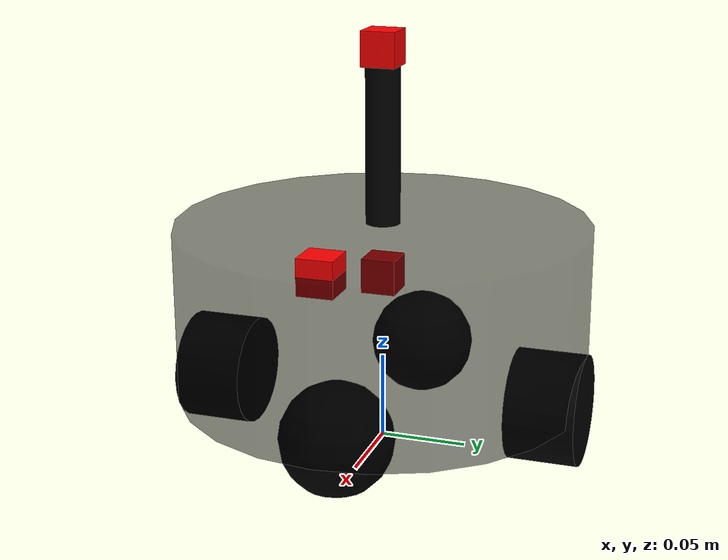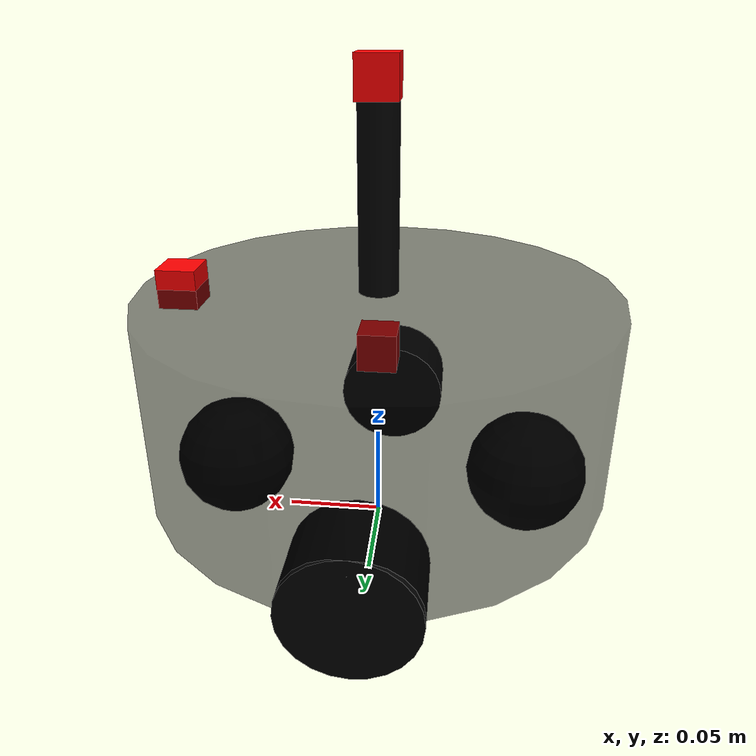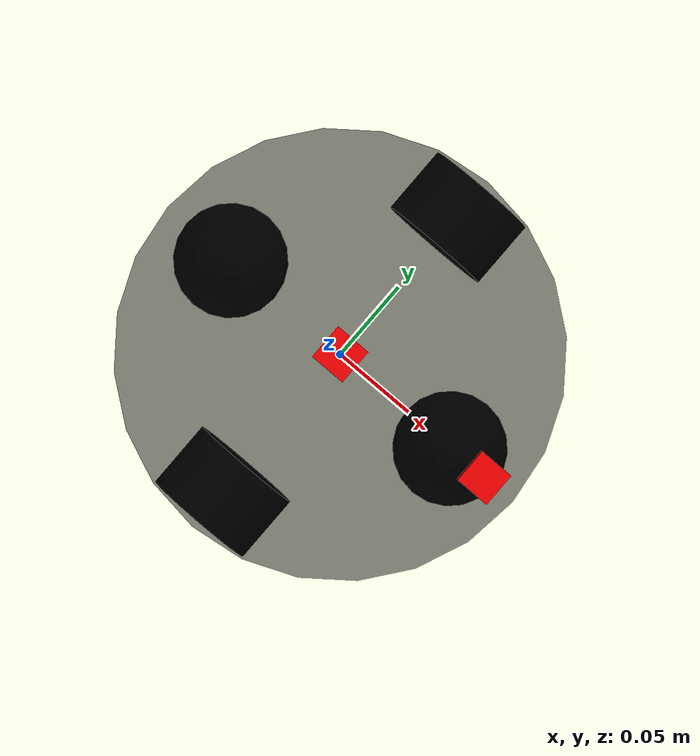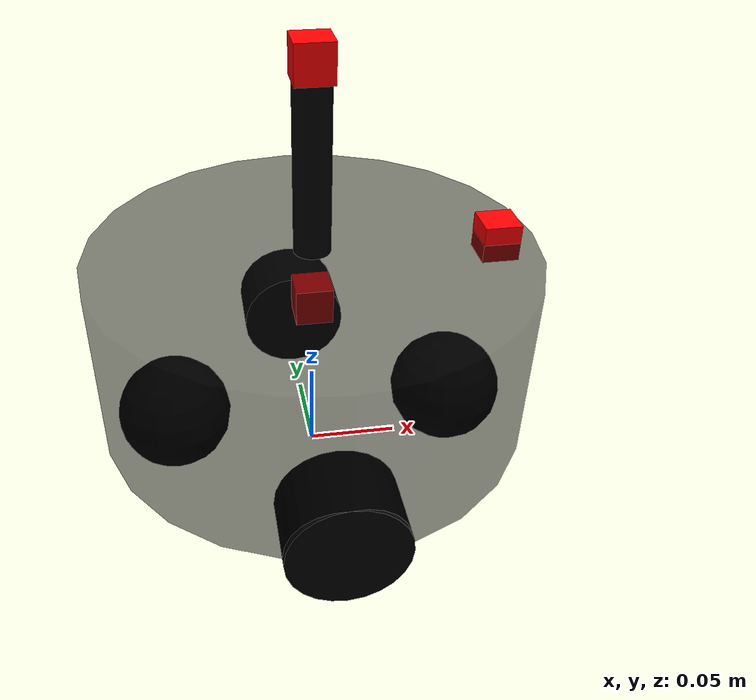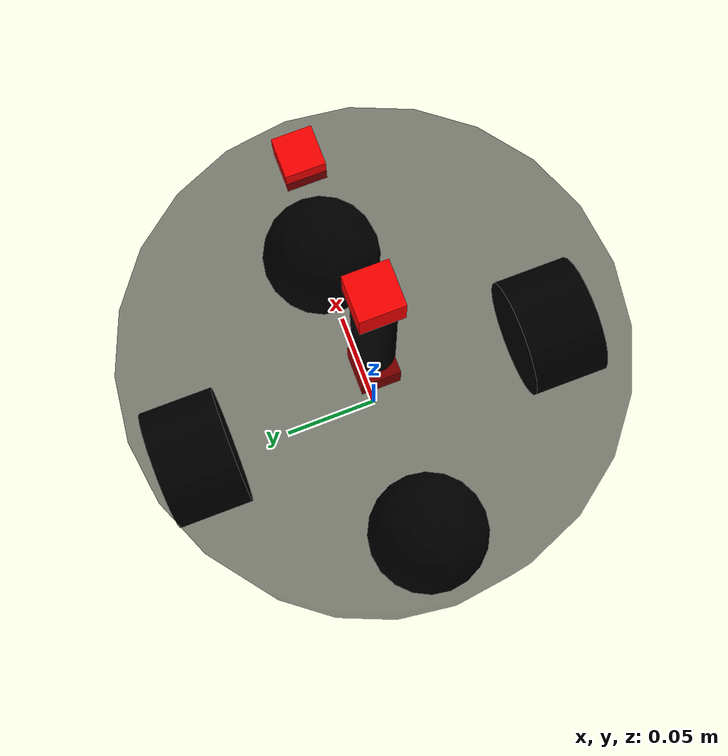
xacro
<?xml version="1.0"?>
<robot name="fishbot" xmlns:xacro="http://www.ros.org/wiki/xacro">

  <!-- Include base macro -->
  <xacro:include filename="$(find mybot_description)/urdf/fishbot/base.urdf.xacro"/>

  <!-- Include modular sensor components from sensor folder -->
  <xacro:include filename="$(find mybot_description)/urdf/fishbot/sensor/camera.urdf.xacro"/>
  <xacro:include filename="$(find mybot_description)/urdf/fishbot/sensor/imu.urdf.xacro"/>
  <xacro:include filename="$(find mybot_description)/urdf/fishbot/sensor/laser.urdf.xacro"/>
  <xacro:include filename="$(find mybot_description)/urdf/fishbot/actuator/wheel.xacro"/>
  <xacro:include filename="$(find mybot_description)/urdf/fishbot/actuator/caster.xacro"/>
  <xacro:include filename="$(find mybot_description)/urdf/fishbot/plugins/gazebo_control_plugins.xacro"/>
  <xacro:include filename="$(find mybot_description)/urdf/fishbot/plugins/gazebo_sensor_plugins.xacro"/>
  <xacro:include filename="$(find mybot_description)/urdf/fishbot/fishbot.ros2_control.xacro"/>

   <!-- Instantiate Gazebo control plugins -->

  <!-- Instantiate base: cylinder length=0.12, radius=0.1 -->
  <xacro:base_xacro length="0.1" radius="0.12"/>

  <!-- Instantiate sensors with provided parameters -->
  <xacro:imu_xacro joint_xyz="0 0 0.02"/>
  <xacro:camera_xacro joint_xyz="0.1 0 0.05"/>
  <xacro:laser_xacro joint_xyz="0 0 0.1"/>

  <xacro:wheel_xacro wheel_name="left_wheel" xyz="0 0.1 -0.05"/>
  <xacro:wheel_xacro wheel_name="right_wheel" xyz="0 -0.1 -0.05"/>

  <xacro:caster_xacro caster_name="front_caster" xyz="0.08 0 -0.05"/>
  <xacro:caster_xacro caster_name="back_caster" xyz="-0.08 0 -0.05"/>
  <xacro:gazebo_sensor_plugin/>
  <xacro:fishbot_ros2_control/>

</robot>

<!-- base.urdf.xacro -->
<robot xmlns:xacro="http://www.ros.org/wiki/xacro">

    <xacro:macro name="base_xacro" params="length radius">
        <!--机器人底盘-->
        <link name="base_link">
            <inertial>
                <mass value="2.0"/>
                <origin xyz="0 0 0" rpy="0 0 0"/>
                <inertia ixx="0.0117" ixy="0.0" ixz="0.0" iyy="0.0117" iyz="0.0" izz="0.01"/>
            </inertial>
            <visual>
                <origin xyz="0 0 0" rpy="0 0 0"/>
                <geometry>
                    <cylinder radius="${radius}" length="${length}"/>
                </geometry>
                <material name="blue">
                    <color rgba="0 0 0 0.5"/>
                </material>
            </visual>
            <collision>
                <origin xyz="0 0 0" rpy="0 0 0"/>
                <geometry>
                    <cylinder radius="${radius}" length="${length}"/>
                </geometry>
            </collision>
        </link>

        <gazebo reference="base_link">
            <material>Gazebo/Blue</material>
        </gazebo>

        <link name="base_footprint_link">
        </link>

        <!--底盘与足迹链接-->
        <joint name="base_to_footprint" type="fixed">
            <parent link="base_footprint_link"/>
            <child link="base_link"/>
            <origin xyz="0 0 ${length/2+0.031}" rpy="0 0 0"/>
        </joint>

    </xacro:macro>

</robot>

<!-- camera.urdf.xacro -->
<robot xmlns:xacro="http://www.ros.org/wiki/xacro">

    <xacro:macro name="camera_xacro" params = "joint_xyz">
        <!-- 相机本体 -->
        <link name="camera_link">
            <visual>
                <origin xyz="0 0 0" rpy="0 0 0"/>
                <geometry>
                    <box size="0.02 0.02 0.02"/>
                </geometry>
                <material name="red">
                    <color rgba="1 0 0 1"/>
                </material>
            </visual>
            <inertial>
                <origin xyz="0 0 0" rpy="0 0 0"/>
                <mass value="0.01"/>
                <inertia ixx="3.33e-6" ixy="0" ixz="0" iyy="3.33e-6" iyz="0" izz="3.33e-6"/>
            </inertial>
        </link>

        <!-- 相机旋转虚拟部件 -->
        <link name="camera_optical_link"></link>

        <gazebo reference="camera_link">
            <material>Gazebo/Red</material>
        </gazebo>

        <joint name="camera_joint" type="fixed">
            <parent link="base_link"/>
            <child link="camera_link"/>
            <origin xyz="${joint_xyz}" rpy="0 0 0"/>
        </joint>

        <joint name="camera_optical_joint" type="fixed">
            <parent link="camera_link"/>
            <child link="camera_optical_link"/>
            <origin xyz="0 0 0" rpy="${-pi/2} 0 ${-pi/2}"/>
        </joint>
    </xacro:macro>

</robot>

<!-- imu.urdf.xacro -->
<robot xmlns:xacro="http://www.ros.org/wiki/xacro">

    <xacro:macro name="imu_xacro" params = "joint_xyz">
        <link name="imu_link">
            <visual>
                <origin xyz="0 0 0" rpy="0 0 0"/>
                <geometry>
                    <box size="0.02 0.02 0.02"/>
                </geometry>
                <material name="red">
                    <color rgba="1 0 0 1"/>
                </material>
            </visual>
            <inertial>
                <origin xyz="0 0 0" rpy="0 0 0"/>
                <mass value="0.01"/>
                <inertia ixx="3.33e-6" ixy="0" ixz="0" iyy="3.33e-6" iyz="0" izz="3.33e-6"/>
            </inertial>
        </link>

        <gazebo reference="imu_link">
            <material>Gazebo/Red</material>
        </gazebo>

        <joint name="imu_joint" type="fixed">
            <parent link="base_link"/>
            <child link="imu_link"/>
            <origin xyz="${joint_xyz}" rpy="0 0 0"/>
        </joint>
    </xacro:macro>

</robot>

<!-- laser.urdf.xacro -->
<robot xmlns:xacro="http://www.ros.org/wiki/xacro">

    <xacro:macro name="laser_xacro" params="joint_xyz">
        <!-- 激光雷达支撑杆 -->
        <link name="laser_support_link">
            <visual>
                <origin xyz="0 0 0" rpy="0 0 0"/>
                <geometry>
                    <cylinder radius="0.01" length="0.1"/>
                </geometry>
                <material name="black">
                    <color rgba="0 0 0 1"/>
                </material>
            </visual>
            <collision>
                <origin xyz="0 0 0" rpy="0 0 0"/>
                <geometry>
                    <cylinder radius="0.01" length="0.1"/>
                </geometry>
            </collision>
            <inertial>
                <origin xyz="0 0 0" rpy="0 0 0"/>
                <mass value="0.05"/>
                <inertia ixx="4.58e-5" ixy="0" ixz="0" iyy="4.58e-5" iyz="0" izz="2.5e-6"/>
            </inertial>
        </link>

        <gazebo reference="laser_support_link">
            <material>Gazebo/Black</material>
        </gazebo>

        <!-- 支撑杆与 base_link 的关节 -->
        <joint name="laser_support_joint" type="fixed">
            <parent link="base_link"/>
            <child link="laser_support_link"/>
            <origin xyz="${joint_xyz}" rpy="0 0 0"/>
        </joint>

        <!-- 激光雷达本体 -->
        <link name="laser_link">
            <visual>
                <origin xyz="0 0 0" rpy="0 0 0"/>
                <geometry>
                    <box size="0.02 0.02 0.02"/>
                </geometry>
                <material name="red">
                    <color rgba="1 0 0 1"/>
                </material>
            </visual>
            <collision>
                <origin xyz="0 0 0" rpy="0 0 0"/>
                <geometry>
                    <box size="0.02 0.02 0.02"/>
                </geometry>
            </collision>
            <inertial>
                <origin xyz="0 0 0" rpy="0 0 0"/>
                <mass value="0.01"/>
                <inertia ixx="3.33e-6" ixy="0" ixz="0" iyy="3.33e-6" iyz="0" izz="3.33e-6"/>
            </inertial>
        </link>

        <gazebo reference="laser_link">
            <material>Gazebo/Red</material>
        </gazebo>

        <!-- 雷达与支撑杆的关节 -->
        <joint name="laser_joint" type="fixed">
            <parent link="laser_support_link"/>
            <child link="laser_link"/>
            <origin xyz="0 0 0.05" rpy="0 0 0"/>
        </joint>
    </xacro:macro>

</robot>

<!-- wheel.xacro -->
<robot xmlns:xacro="http://www.ros.org/wiki/xacro">

  <xacro:macro name="wheel_xacro" params="wheel_name xyz">
    <!-- 轮子关节 -->
    <joint name="${wheel_name}_joint" type="continuous">
      <parent link="base_link"/>
      <child link="${wheel_name}_link"/>
      <origin xyz="${xyz}" rpy="0 0 0"/>
      <axis xyz="0 1 0"/>
    </joint>

    <!-- 轮子连杆 -->
    <link name="${wheel_name}_link">
      <inertial>
        <mass value="0.1"/>
        <origin xyz="0 0 0" rpy="0 0 0"/>
        <inertia ixx="0.0001" ixy="0.0" ixz="0.0" iyy="0.0001" iyz="0.0" izz="0.0001"/>
      </inertial>
      <visual>
        <origin xyz="0 0 0" rpy="1.5708 0 0"/>
        <geometry>
          <cylinder radius="0.032" length="0.04"/>
        </geometry>
        <material name="black">
          <color rgba="0 0 0 1.0"/>
        </material>
      </visual>
      <collision>
        <origin xyz="0 0 0" rpy="1.5708 0 0"/>
        <geometry>
          <cylinder radius="0.032" length="0.04"/>
        </geometry>
      </collision>
    </link>

    <gazebo reference="${wheel_name}_link">
      <material>Gazebo/Black</material>
    </gazebo>

    <!-- 轮子物理属性 -->
    <gazebo reference="${wheel_name}_link">
      <mu>20.0</mu>
      <mu2>20.0</mu2>
      <kp>1000000.0</kp>
      <kd>1.0</kd>
    </gazebo>

  </xacro:macro>

</robot>

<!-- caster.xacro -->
<robot xmlns:xacro="http://www.ros.org/wiki/xacro">

  <xacro:macro name="caster_xacro" params="caster_name xyz">
    <!-- 万向轮关节 -->
    <joint name="${caster_name}_joint" type="fixed">
      <parent link="base_link"/>
      <child link="${caster_name}_link"/>
      <origin xyz="${xyz}" rpy="0 0 0"/>
    </joint>

    <!-- 万向轮连杆 -->
    <link name="${caster_name}_link">
      <inertial>
        <mass value="0.05"/>
        <origin xyz="0 0 0" rpy="0 0 0"/>
        <inertia ixx="0.00005" ixy="0.0" ixz="0.0" iyy="0.00005" iyz="0.0" izz="0.00005"/>
      </inertial>

      <visual>
        <origin xyz="0 0 0" rpy="0 0 0"/>
        <geometry>
          <sphere radius="0.032"/>
        </geometry>
        <material name="black">
          <color rgba="0 0 0 1.0"/>
        </material>
      </visual>
      <collision>
        <origin xyz="0 0 0" rpy="0 0 0"/>
        <geometry>
          <sphere radius="0.032"/>
        </geometry>
      </collision>
    </link>

    <gazebo reference="${caster_name}_link">
      <material>Gazebo/Black</material>
    </gazebo>

    <gazebo reference="${caster_name}_link">
      <mu>0.0</mu>
      <mu2>0.0</mu2>
      <kp>1000000.0</kp>
      <kd>1.0</kd>
    </gazebo>
  </xacro:macro>
</robot>
